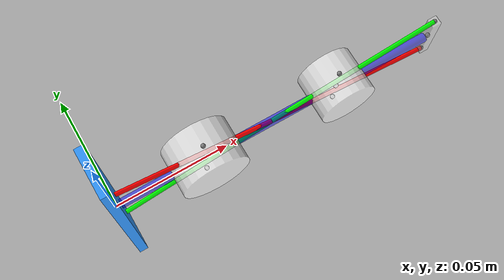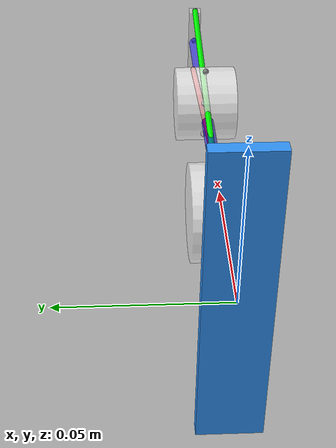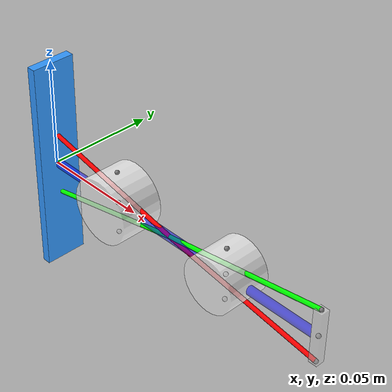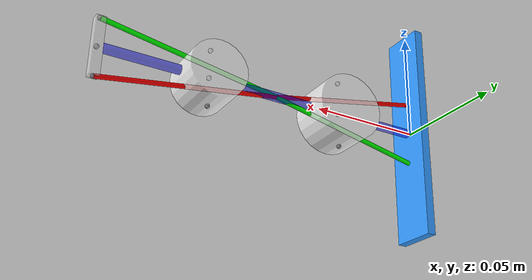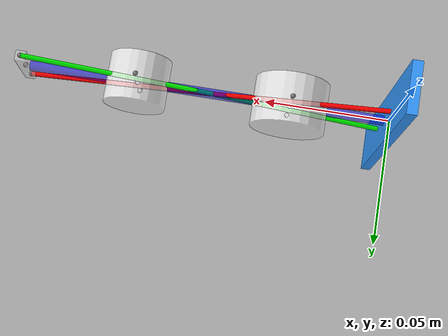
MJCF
<?xml version='1.0' encoding='UTF-8'?>
<mujoco>
    <option timestep="1e-4"/>
    <option integrator="RK4"/>
    <option gravity="0 0 -9.8"/>

    <asset>
        <texture type="skybox" builtin="gradient" rgb1="0.89 0.85 1" rgb2="0.8 0.65 0.7" width="256" height="256"/>
        <texture name="floor_pattern" type="2d" builtin="checker" rgb1="0.1 0.1 0.1" rgb2="0.6 0.6 0.6" width="256" height="256"/>
        <material name="floor_material" texture="floor_pattern" texrepeat="10 10" reflectance="0.2"/>
    </asset>

    <worldbody>
        <light pos="0 0 10"/>
        <geom type="plane" size="0.5 0.5 0.1" material="floor_material" pos="0 0 -0.5"/>

        <body name="base_platform" pos="0 0 0" euler="0 90 0">
            <geom type="box" size="0.05 0.01 0.002" rgba="0.2 0.6 1 1"/>
            <site name="left_tendon_anchor" pos="0.015 0 0" type="sphere" size="0.001"/>
            <site name="right_tendon_anchor" pos="-0.015 0 0" type="sphere" size="0.001"/>
        </body>

        <body name="carriage_guide" pos="0.148 0 0">
            <site name="carriage_attachment" pos="0 0 0" type="sphere" size="0.001"/>
            <joint name="guide_slide_x" type="slide" axis="1 0 0"/>
            <joint name="guide_slide_z" type="slide" axis="0 0 1"/>
            <geom type="box" size="0.0002 0.0002 0.0002" mass="0.1" contype="0"/>
        </body>

        <body name="first_arm" pos="0 0 0" euler="0 0 0">
            <geom type="cylinder" pos="0.02 0 0" euler="0 90 0" mass="0.1" size="0.002 0.02" rgba="0 0 1 0.5"/>

            <body name="second_arm" pos="0.04 0 0" euler="0 0 0">
                <joint name="first_joint" type="hinge" axis="0 1 0" stiffness="0" springref="0" damping="0.5"/>
                <geom type="cylinder" mass="0.1" pos="0.031 0 0" size="0.002 0.031" euler="0 90 0" rgba="0 0 1 0.5"/>

                <geom name="first_pulley" type="cylinder" size="0.015 0.01" pos="0 0 0" euler="90 0 0" rgba="1 1 1 0.8" mass="0.05"/>
                <site name="first_pulley_bottom" pos="0 0 -0.01515" type="sphere" size="0.001"/>
                <site name="first_pulley_top" pos="0 0 0.01515" type="sphere" size="0.001"/>
                <site name="first_pulley_center" pos="0 0 0" type="sphere" size="0.001"/>

                <body name="third_arm" pos="0.062 0 0" euler="0 0 0">
                    <joint name="second_joint" type="hinge" axis="0 1 0" stiffness="0" springref="0" damping="0.5"/>
                    <geom type="cylinder" pos="0.023 0 0" size="0.002 0.023" euler="0 90 0" rgba="0 0 1 0.5" mass="0.1"/>

                    <geom name="second_pulley" type="cylinder" size="0.0125 0.01" pos="0 0 0" euler="90 0 0" mass="0.05" rgba="1 1 1 0.8"/>
                    <site name="second_pulley_top" pos="0 0 0.012515" type="sphere" size="0.001"/>
                    <site name="second_pulley_bottom" pos="0 0 -0.012515" type="sphere" size="0.001"/>
                    <site name="second_pulley_center" pos="0 0 0" type="sphere" size="0.001"/>
                    <site name="carriage" pos="0.046 0 0" type="sphere" size="0.001"/>

                    <body name="Carriage" pos="0.046 0 0" euler="0 0 0">
                        <geom type="box" size="0.002 0.002 0.0125" pos="0 0 0" rgba="0.9 0.9 0.9 0.5" mass="0.1"/>
                        <site name="carriage_top" pos="0 0 0.0125" type="sphere" size="0.001"/>
                        <site name="carriage_bottom" pos="0 0 -0.0125" type="sphere" size="0.001"/>
                    </body>
                </body>
            </body>
        </body>

        <body name="tendon_guide_point" pos="0.071 0 0">
            <geom type="box" size="0.00001 0.0001 0.0001" contype="0" mass="0.01"/>
            <site name="guide_point_center" pos="0 0 0" type="cylinder" size="0.0001 0.00001"/>
            <joint name="guide_slide_x2" type="slide" axis="1 0 0" damping="0.1"/>
            <joint name="guide_slide_z2" type="slide" axis="0 0 1" damping="0.1"/>
        </body>
    </worldbody>

    <tendon>
        <spatial name="left_tendon" width="0.001" stiffness="50" damping="5" springlength="0.005" rgba="1 0 0 1">
            <site site="right_tendon_anchor"/>
            <geom geom="first_pulley" sidesite="first_pulley_top"/>
            <site site="guide_point_center"/>
            <geom geom="second_pulley" sidesite="second_pulley_bottom"/>
            <site site="carriage_bottom"/>
        </spatial>
    </tendon>

    <tendon>
        <spatial name="right_tendon" width="0.001" stiffness="50" damping="5" springlength="0.005" rgba="0 1 0 1">
            <site site="left_tendon_anchor"/>
            <geom geom="first_pulley" sidesite="first_pulley_bottom"/>
            <site site="guide_point_center"/>
            <geom geom="second_pulley" sidesite="second_pulley_top"/>
            <site site="carriage_top"/>
        </spatial>
    </tendon>

    <equality>
        <connect site1="guide_point_center" site2="first_pulley_center"/>
        <connect site1="guide_point_center" site2="second_pulley_center"/>
    </equality>

    <actuator>
        <motor name="left_tendon_motor" joint="first_joint" gear="1"/>
        <motor name="right_tendon_motor" joint="second_joint" gear="1"/>
    </actuator>

    <sensor>
        <framepos objtype="site" objname="carriage"/>
        <jointpos joint="first_joint" name="q1"/>
        <jointvel joint="first_joint" name="dq1"/>
        <jointpos joint="second_joint" name="q2"/>
        <jointvel joint="second_joint" name="dq2"/>
    </sensor>
</mujoco>
